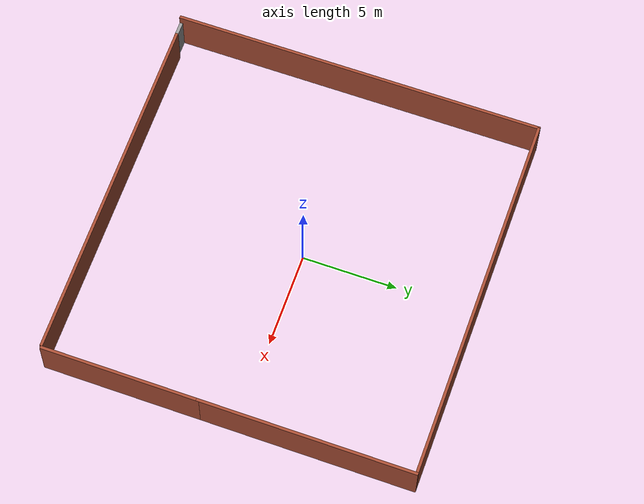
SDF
<?xml version='1.0'?>
<sdf version='1.7'>
  <model name='wall_with_texture'>
    <pose>0.026075 -0.477142 0 0 -0 0</pose>
    <link name='Door_0'>
      <collision name='Door_0_Collision'>
        <geometry>
          <box>
            <size>0.9 0.17 2</size>
          </box>
        </geometry>
        <pose>0 0 1 0 -0 0</pose>
      </collision>
      <visual name='Door_0_Visual'>
        <pose>0 0 1 0 -0 0</pose>
        <geometry>
          <box>
            <size>0.9 0.17 2</size>
          </box>
        </geometry>
        <material>
          <script>
            <uri>file://media/materials/scripts/gazebo.material</uri>
            <name>Gazebo/Grey</name>
          </script>
        </material>
      </visual>
      <pose>-9.30535 -9.68205 0 0 -0 0</pose>
    </link>
    <link name='Wall_0'>
      <collision name='Wall_0_Collision'>
        <geometry>
          <box>
            <size>19.5405 0.15 2.5</size>
          </box>
        </geometry>
        <pose>0 0 1.25 0 -0 0</pose>
      </collision>
      <visual name='Wall_0_Visual'>
        <pose>0 0 1.25 0 -0 0</pose>
        <geometry>
          <box>
            <size>19.5405 0.15 2.5</size>
          </box>
        </geometry>
        <material>
          <script>
            <uri>file://media/materials/scripts/gazebo.material</uri>
            <name>Gazebo/Bricks</name>
          </script>
          <ambient>1 1 1 1</ambient>
        </material>
        <meta>
          <layer>0</layer>
        </meta>
      </visual>
      <pose>-9.7797 0 0 0 -0 -1.56871</pose>
    </link>
    <link name='Wall_11'>
      <collision name='Wall_11_Collision'>
        <geometry>
          <box>
            <size>18.5 0.15 2.5</size>
          </box>
        </geometry>
        <pose>0 0 1.25 0 -0 0</pose>
      </collision>
      <visual name='Wall_11_Visual'>
        <pose>0 0 1.25 0 -0 0</pose>
        <geometry>
          <box>
            <size>18.5 0.15 2.5</size>
          </box>
        </geometry>
        <material>
          <script>
            <uri>file://media/materials/scripts/gazebo.material</uri>
            <name>Gazebo/Bricks</name>
          </script>
          <ambient>1 1 1 1</ambient>
        </material>
        <meta>
          <layer>0</layer>
        </meta>
      </visual>
      <pose>0.476975 -9.55957 0 0 -0 0</pose>
    </link>
    <link name='Wall_5'>
      <collision name='Wall_5_Collision'>
        <geometry>
          <box>
            <size>19.75 0.15 2.5</size>
          </box>
        </geometry>
        <pose>0 0 1.25 0 -0 0</pose>
      </collision>
      <visual name='Wall_5_Visual'>
        <pose>0 0 1.25 0 -0 0</pose>
        <geometry>
          <box>
            <size>19.75 0.15 2.5</size>
          </box>
        </geometry>
        <material>
          <script>
            <uri>file://media/materials/scripts/gazebo.material</uri>
            <name>Gazebo/Bricks</name>
          </script>
          <ambient>1 1 1 1</ambient>
        </material>
        <meta>
          <layer>0</layer>
        </meta>
      </visual>
      <pose>7.7e-05 9.69523 0 0 -0 0</pose>
    </link>
    <link name='Wall_7'>
      <collision name='Wall_7_Collision'>
        <geometry>
          <box>
            <size>11.25 0.15 2.5</size>
          </box>
        </geometry>
        <pose>0 0 1.25 0 -0 0</pose>
      </collision>
      <visual name='Wall_7_Visual'>
        <pose>0 0 1.25 0 -0 0</pose>
        <geometry>
          <box>
            <size>11.25 0.15 2.5</size>
          </box>
        </geometry>
        <material>
          <script>
            <uri>file://media/materials/scripts/gazebo.material</uri>
            <name>Gazebo/Bricks</name>
          </script>
          <ambient>1 1 1 1</ambient>
        </material>
        <meta>
          <layer>0</layer>
        </meta>
      </visual>
      <pose>9.80008 4.14523 0 0 -0 -1.5708</pose>
    </link>
    <link name='Wall_8'>
      <collision name='Wall_8_Collision'>
        <geometry>
          <box>
            <size>8.25 0.15 2.5</size>
          </box>
        </geometry>
        <pose>0 0 1.25 0 -0 0</pose>
      </collision>
      <visual name='Wall_8_Visual'>
        <pose>0 0 1.25 0 -0 0</pose>
        <geometry>
          <box>
            <size>8.25 0.15 2.5</size>
          </box>
        </geometry>
        <material>
          <script>
            <uri>file://media/materials/scripts/gazebo.material</uri>
            <name>Gazebo/Bricks</name>
          </script>
          <ambient>1 1 1 1</ambient>
        </material>
        <meta>
          <layer>0</layer>
        </meta>
      </visual>
      <pose>9.80008 -5.45477 0 0 -0 -1.5708</pose>
    </link>
    <static>1</static>
  </model>
</sdf>
